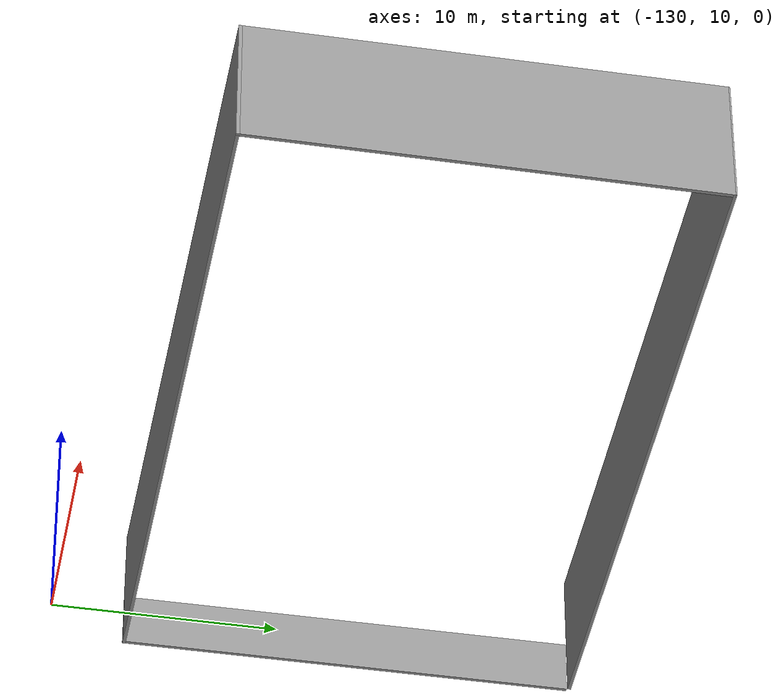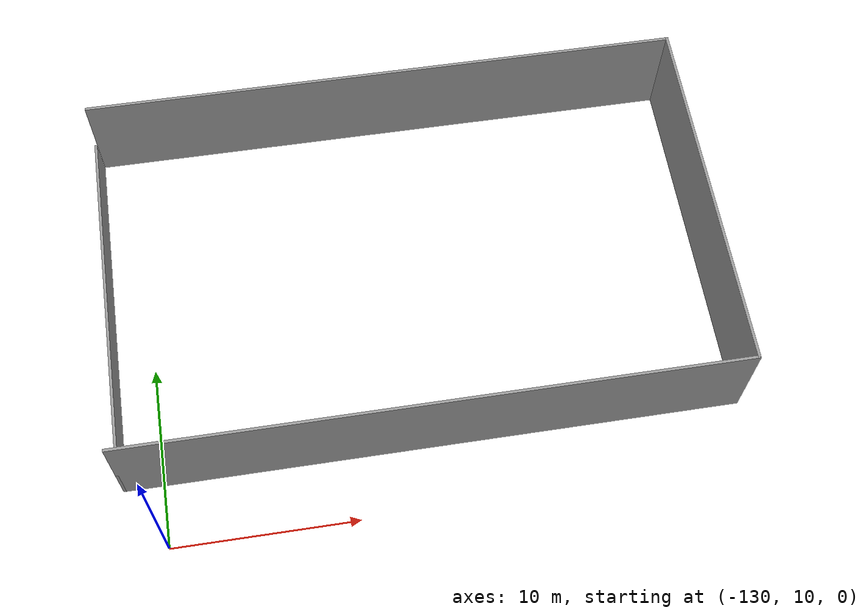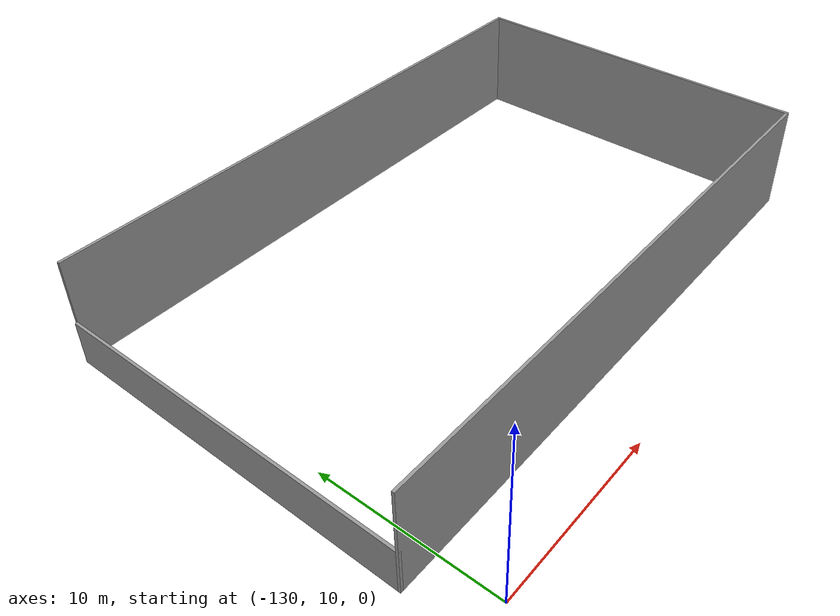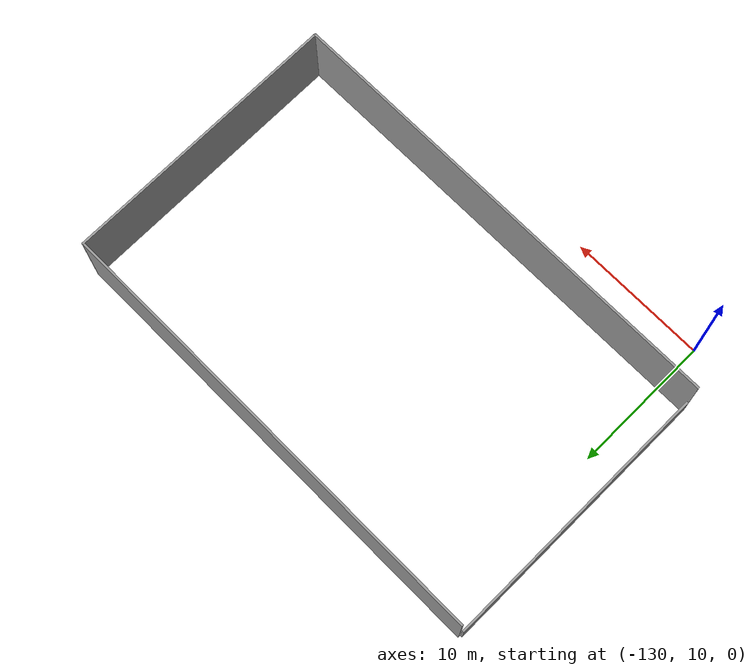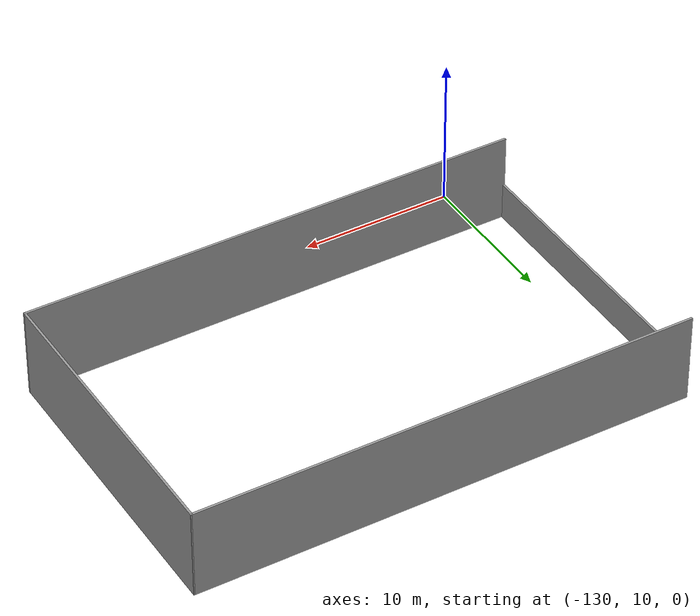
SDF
<?xml version='1.0'?>
<sdf version='1.7'>
  <model name='building2'>
    <pose>-66.0825 16.8767 0 0 -0 0</pose>
    <link name='Wall_89'>
      <collision name='Wall_89_Collision'>
        <geometry>
          <box>
            <size>33.0005 0.15 6</size>
          </box>
        </geometry>
        <pose>0 0 3 0 -0 0</pose>
      </collision>
      <visual name='Wall_89_Visual'>
        <pose>0 0 3 0 -0 0</pose>
        <geometry>
          <box>
            <size>33.0005 0.15 6</size>
          </box>
        </geometry>
        <material>
          <script>
            <uri>file://media/materials/scripts/gazebo.material</uri>
            <name>Gazebo/Grey</name>
          </script>
          <ambient>1 1 1 1</ambient>
        </material>
        <meta>
          <layer>0</layer>
        </meta>
      </visual>
      <pose>-49.4325 16.7073 0 0 -0 -0.005723</pose>
    </link>
    <link name='Wall_90'>
      <collision name='Wall_90_Collision'>
        <geometry>
          <box>
            <size>20.15 0.15 6</size>
          </box>
        </geometry>
        <pose>0 0 3 0 -0 0</pose>
      </collision>
      <visual name='Wall_90_Visual'>
        <pose>0 0 3 0 -0 0</pose>
        <geometry>
          <box>
            <size>20.15 0.15 6</size>
          </box>
        </geometry>
        <material>
          <script>
            <uri>file://media/materials/scripts/gazebo.material</uri>
            <name>Gazebo/Grey</name>
          </script>
          <ambient>1 1 1 1</ambient>
        </material>
        <meta>
          <layer>0</layer>
        </meta>
      </visual>
      <pose>-33.0075 6.61329 0 0 -0 -1.5708</pose>
    </link>
    <link name='Wall_91'>
      <collision name='Wall_91_Collision'>
        <geometry>
          <box>
            <size>33.15 0.15 6</size>
          </box>
        </geometry>
        <pose>0 0 3 0 -0 0</pose>
      </collision>
      <visual name='Wall_91_Visual'>
        <pose>0 0 3 0 -0 0</pose>
        <geometry>
          <box>
            <size>33.15 0.15 6</size>
          </box>
        </geometry>
        <material>
          <script>
            <uri>file://media/materials/scripts/gazebo.material</uri>
            <name>Gazebo/Grey</name>
          </script>
          <ambient>1 1 1 1</ambient>
        </material>
        <meta>
          <layer>0</layer>
        </meta>
      </visual>
      <pose>-49.5075 -3.38672 0 0 -0 3.14159</pose>
    </link>
    <link name='Wall_92'>
      <collision name='Wall_92_Collision'>
        <geometry>
          <box>
            <size>20.15 0.15 2.5</size>
          </box>
        </geometry>
        <pose>0 0 1.25 0 -0 0</pose>
      </collision>
      <visual name='Wall_92_Visual'>
        <pose>0 0 1.25 0 -0 0</pose>
        <geometry>
          <box>
            <size>20.15 0.15 2.5</size>
          </box>
        </geometry>
        <material>
          <script>
            <uri>file://media/materials/scripts/gazebo.material</uri>
            <name>Gazebo/Grey</name>
          </script>
          <ambient>1 1 1 1</ambient>
        </material>
        <meta>
          <layer>0</layer>
        </meta>
      </visual>
      <pose>-66.0075 6.61329 0 0 -0 1.5708</pose>
    </link>
    <static>1</static>
  </model>
</sdf>
